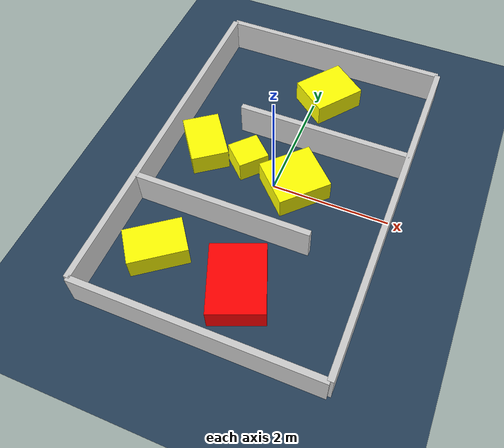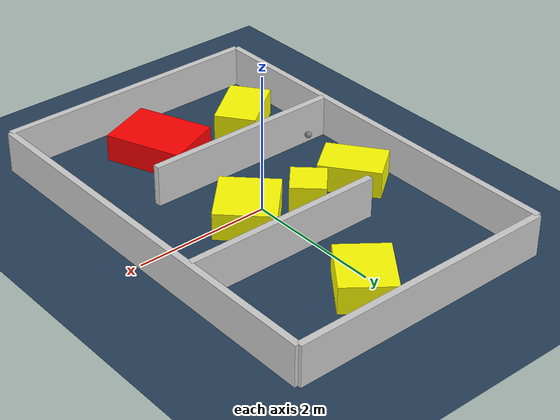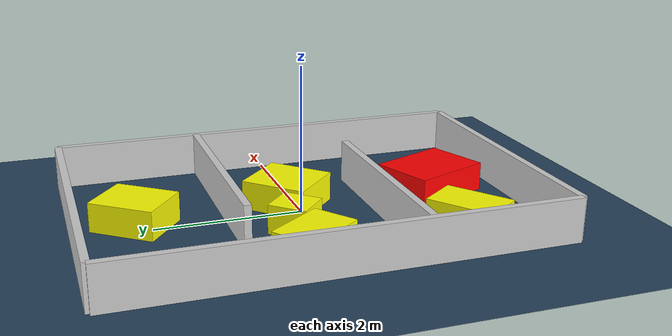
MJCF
<?xml version="1.0" ?>
<mujoco model="generated_environment">
  <option timestep="0.01" integrator="RK4" cone="elliptic"/>
  <default>
    <geom density="1"/>
  </default>
  <asset>
    <texture builtin="gradient" height="3072" rgb1="0.3 0.5 0.7" rgb2="0 0 0" type="skybox" width="512"/>
    <texture builtin="checker" height="300" mark="edge" markrgb="0.8 0.8 0.8" name="groundplane" rgb1="0.2 0.3 0.4" rgb2="0.1 0.2 0.3" type="2d" width="300"/>
    <material name="groundplane" reflectance="0.2" texrepeat="5 5" texture="groundplane" texuniform="true"/>
    <material name="robot" rgba="0.0 1.0 0.0 1"/>
  </asset>
  <worldbody>
    <light dir="0 0 -1" directional="true" pos="0 0 1.5"/>
    <geom condim="4" friction="1.0 0.005 0.001" material="groundplane" name="floor" size="0 0 0.05" type="plane"/>
    <body name="walls">
      <geom name="wall_1" condim="4" pos="-2.0 0.0 0.3" rgba="0.800000011920929 0.800000011920929 0.800000011920929 1.0" size="0.05 3.0 0.3" type="box"/>
      <geom name="wall_2" condim="4" pos="2.0 0.0 0.3" rgba="0.800000011920929 0.800000011920929 0.800000011920929 1.0" size="0.05 3.0 0.3" type="box"/>
      <geom name="wall_3" condim="4" pos="0.0 -3.0 0.3" rgba="0.800000011920929 0.800000011920929 0.800000011920929 1.0" size="2.0 0.05 0.3" type="box"/>
      <geom name="wall_4" condim="4" pos="0.0 3.0 0.3" rgba="0.800000011920929 0.800000011920929 0.800000011920929 1.0" size="2.0 0.05 0.3" type="box"/>
      <geom name="wall_5" condim="4" pos="-0.5 -1.0 0.3" rgba="0.800000011920929 0.800000011920929 0.800000011920929 1.0" size="1.5 0.05 0.3" type="box"/>
      <geom name="wall_6" condim="4" pos="0.5 1.0 0.3" rgba="0.800000011920929 0.800000011920929 0.800000011920929 1.0" size="1.5 0.05 0.3" type="box"/>
    </body>
    <body name="robot">
      <joint name="joint_x" type="slide" pos="0 0 0" axis="1 0 0"/>
      <joint name="joint_y" type="slide" pos="0 0 0" axis="0 1 0"/>
      <geom name="robot" type="sphere" pos="-1.547594138904635 -0.8288074809319355 0.2" size="0.05" mass="5." friction="1.0 0.005 0.0001" condim="4"/>
      <site name="sensor_ball"/>
    </body>
    <body name="obstacle_1_movable">
      <geom name="obstacle_1_movable" condim="4" pos="-1.3860986095639496 0.27972948129184605 0.2" euler="0 0 306.4252496046182" friction="1.0 0.005 0.001" rgba="1 1 0 1" size="0.4485175091906301 0.3145156117264365 0.2" type="box" mass="0.1"/>
      <joint type="free"/>
    </body>
    <body name="obstacle_2_movable">
      <geom name="obstacle_2_movable" condim="4" pos="-0.5748195748403166 0.26839812241303784 0.2" euler="0 0 226.92719209604405" friction="1.0 0.005 0.001" rgba="1 1 0 1" size="0.2651499605326105 0.2517268788523846 0.2" type="box" mass="0.1"/>
      <joint type="free"/>
    </body>
    <body name="obstacle_3_static">
      <geom name="obstacle_3_static" condim="4" pos="0.22132075839611676 -1.9980675583642413 0.2" euler="0 0 111.75565863123606" friction="1.0 0.005 0.001" rgba="1 0 0 1" size="0.580798082128908 0.4441465320180388 0.2" type="box"/>
    </body>
    <body name="obstacle_4_movable">
      <geom name="obstacle_4_movable" condim="4" pos="-1.203124765657781 -1.8807139335919765 0.2" euler="0 0 306.57332819315275" friction="1.0 0.005 0.001" rgba="1 1 0 1" size="0.3048700808796384 0.4725400851200166 0.2" type="box" mass="0.1"/>
      <joint type="free"/>
    </body>
    <body name="obstacle_5_movable">
      <geom name="obstacle_5_movable" condim="4" pos="0.2090987592565947 2.1944812381850998 0.2" euler="0 0 142.36989743556657" friction="1.0 0.005 0.001" rgba="1 1 0 1" size="0.37823891184699565 0.45552639215890234 0.2" type="box" mass="0.1"/>
      <joint type="free"/>
    </body>
    <body name="obstacle_6_movable">
      <geom name="obstacle_6_movable" condim="4" pos="0.3346893060713838 0.09632892782802172 0.2" euler="0 0 135.51215274229418" friction="1.0 0.005 0.001" rgba="1 1 0 1" size="0.42608374857077436 0.4589622537304202 0.2" type="box" mass="0.1"/>
      <joint type="free"/>
    </body>
  </worldbody>
  <actuator>
    <motor name="actuator_x" joint="joint_x" gear="1" ctrlrange="-1 1"/>
    <motor name="actuator_y" joint="joint_y" gear="1" ctrlrange="-1 1"/>
  </actuator>
</mujoco>
